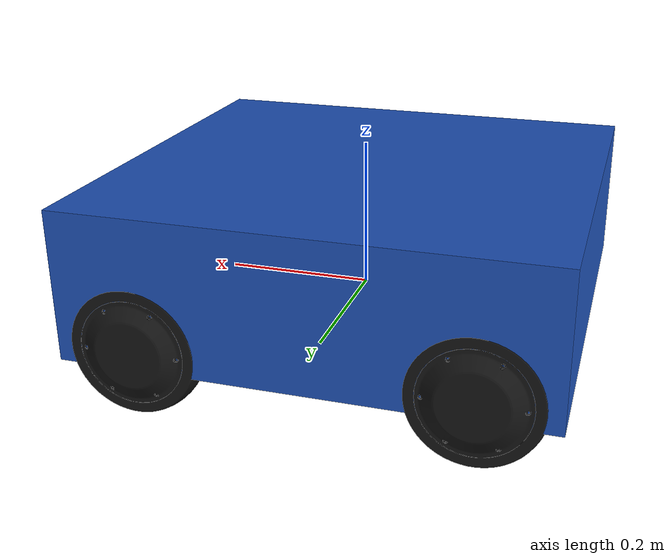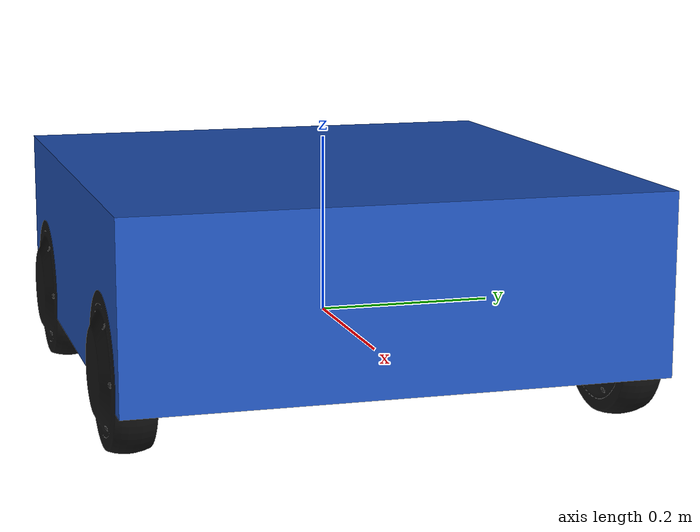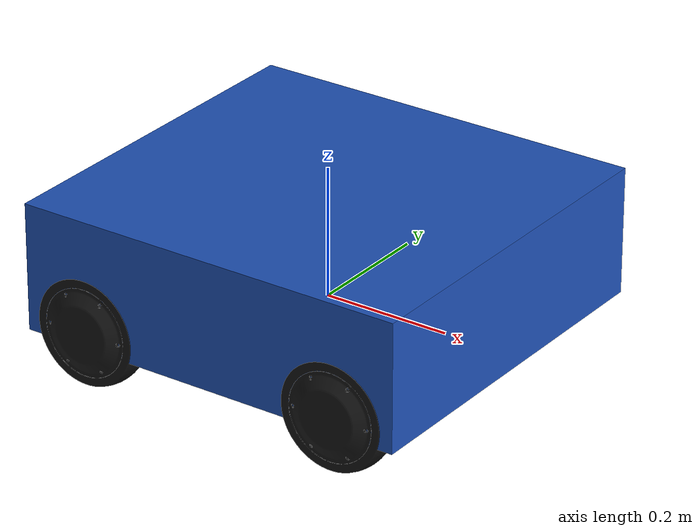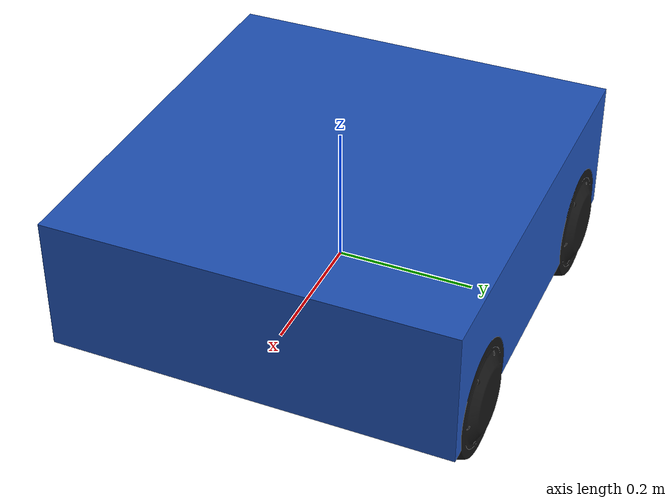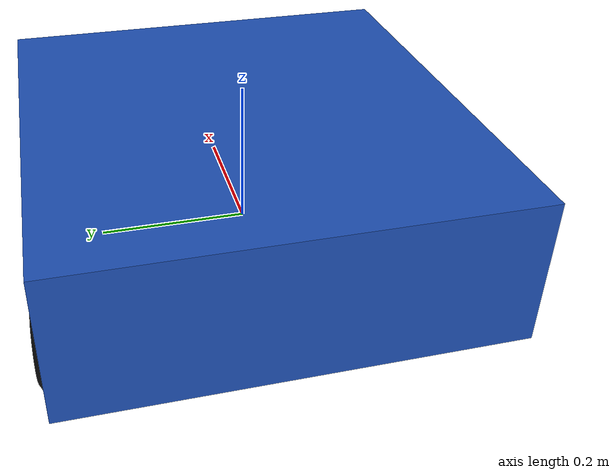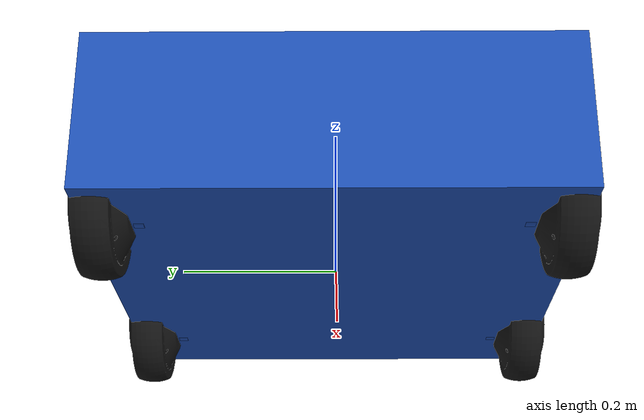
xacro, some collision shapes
<?xml version="1.0"?>
<robot xmlns:xacro="http://www.ros.org/wiki/xacro" name="mobile_base">
  <xacro:arg name="use_mock_hardware" default="false"/>
  <xacro:arg name="dm_can_interface" default="can0"/>
  <xacro:arg name="dm_can_fd" default="false"/>
  <xacro:arg name="zlac_can_interface" default="can1"/>
  <xacro:arg name="front_x" default="0.2095"/>
  <xacro:arg name="rear_x" default="-0.2095"/>
  <xacro:arg name="left_y" default="0.2250"/>
  <xacro:arg name="right_y" default="-0.2250"/>
  <xacro:arg name="wheel_radius" default="0.0855"/>
  <xacro:arg name="use_cad_visuals" default="true"/>
  <xacro:arg name="steering_limit_rad" default="1.5707963267948966"/>
  <xacro:arg name="fl_motor_id" default="0x01"/><xacro:arg name="fl_master_id" default="0x11"/><xacro:arg name="fl_steer_direction" default="1"/><xacro:arg name="fl_offset" default="0"/>
  <xacro:arg name="fr_motor_id" default="0x02"/><xacro:arg name="fr_master_id" default="0x12"/><xacro:arg name="fr_steer_direction" default="1"/><xacro:arg name="fr_offset" default="0"/>
  <xacro:arg name="rl_motor_id" default="0x03"/><xacro:arg name="rl_master_id" default="0x13"/><xacro:arg name="rl_steer_direction" default="1"/><xacro:arg name="rl_offset" default="0"/>
  <xacro:arg name="rr_motor_id" default="0x04"/><xacro:arg name="rr_master_id" default="0x14"/><xacro:arg name="rr_steer_direction" default="1"/><xacro:arg name="rr_offset" default="0"/>
  <xacro:arg name="fl_steer_max_velocity" default="0.5"/><xacro:arg name="fr_steer_max_velocity" default="0.5"/>
  <xacro:arg name="rl_steer_max_velocity" default="0.5"/><xacro:arg name="rr_steer_max_velocity" default="0.5"/>
  <xacro:arg name="fl_node" default="1"/><xacro:arg name="fl_channel" default="1"/><xacro:arg name="fl_drive_direction" default="1"/><xacro:arg name="fl_gear_ratio" default="1"/><xacro:arg name="fl_max_rpm" default="1000"/>
  <xacro:arg name="fr_node" default="1"/><xacro:arg name="fr_channel" default="2"/><xacro:arg name="fr_drive_direction" default="-1"/><xacro:arg name="fr_gear_ratio" default="1"/><xacro:arg name="fr_max_rpm" default="1000"/>
  <xacro:arg name="rl_node" default="2"/><xacro:arg name="rl_channel" default="1"/><xacro:arg name="rl_drive_direction" default="1"/><xacro:arg name="rl_gear_ratio" default="1"/><xacro:arg name="rl_max_rpm" default="1000"/>
  <xacro:arg name="rr_node" default="2"/><xacro:arg name="rr_channel" default="2"/><xacro:arg name="rr_drive_direction" default="-1"/><xacro:arg name="rr_gear_ratio" default="1"/><xacro:arg name="rr_max_rpm" default="1000"/>

  <material name="chassis_blue">
    <color rgba="0.12 0.32 0.72 1.0"/>
  </material>
  <material name="wheel_dark">
    <color rgba="0.08 0.08 0.08 1.0"/>
  </material>

  <link name="base_link">
    <inertial>
      <origin xyz="-0.00034 -0.00200 0.08816" rpy="0 0 0"/>
      <mass value="4.6188"/>
      <inertia ixx="0.036984" ixy="0" ixz="0" iyy="0.028019" iyz="0" izz="0.062335"/>
    </inertial>
    <xacro:if value="$(arg use_cad_visuals)">
      <visual>
        <!-- Recenter CAD and convert its X/Y/Z convention to REP-103. -->
        <origin xyz="0.236324 1.3581995 0.043774" rpy="3.14159265 0 -1.57079633"/>
        <geometry><mesh filename="package://mobile_base_description/meshes/chassis_4wis_cad/base_link.STL"/></geometry>
        <material name="chassis_blue"/>
      </visual>
    </xacro:if>
    <xacro:unless value="$(arg use_cad_visuals)">
      <visual>
        <origin xyz="0 0 0.0745" rpy="0 0 0"/>
        <geometry><box size="0.620 0.580 0.197"/></geometry>
        <material name="chassis_blue"/>
      </visual>
    </xacro:unless>
    <!-- Deliberately simple: triangle-mesh collision is too costly for MoveIt/Isaac. -->
    <collision>
      <origin xyz="0 0 0.0745" rpy="0 0 0"/>
      <geometry><box size="0.620 0.580 0.197"/></geometry>
    </collision>
  </link>

  <xacro:macro name="swerve_module" params="name xyz wheel_y_offset steer_mesh steer_mesh_xyz steer_mesh_rpy wheel_mesh wheel_mesh_xyz wheel_mesh_rpy">
    <link name="${name}_steer_link">
      <inertial>
        <origin xyz="0 0 0.04" rpy="0 0 0"/>
        <mass value="0.11351"/>
        <inertia ixx="0.000064" ixy="0" ixz="0" iyy="0.000064" iyz="0" izz="0.000044"/>
      </inertial>
      <xacro:if value="$(arg use_cad_visuals)">
        <visual>
          <origin xyz="${steer_mesh_xyz}" rpy="${steer_mesh_rpy}"/>
          <geometry><mesh filename="package://mobile_base_description/meshes/chassis_4wis_cad/${steer_mesh}"/></geometry>
          <material name="chassis_blue"/>
        </visual>
      </xacro:if>
      <xacro:unless value="$(arg use_cad_visuals)">
        <visual>
          <origin xyz="0 0 0.04" rpy="0 0 0"/>
          <geometry><cylinder radius="0.045" length="0.13"/></geometry>
          <material name="chassis_blue"/>
        </visual>
      </xacro:unless>
      <collision>
        <origin xyz="0 0 0.04" rpy="0 0 0"/>
        <geometry><cylinder radius="0.045" length="0.13"/></geometry>
      </collision>
    </link>
    <link name="${name}_wheel_link">
      <inertial>
        <origin xyz="0 0 0" rpy="0 0 0"/>
        <mass value="1.1612"/>
        <inertia ixx="0.0022" ixy="0" ixz="0" iyy="0.0040" iyz="0" izz="0.0022"/>
      </inertial>
      <xacro:if value="$(arg use_cad_visuals)">
        <visual>
          <origin xyz="${wheel_mesh_xyz}" rpy="${wheel_mesh_rpy}"/>
          <geometry><mesh filename="package://mobile_base_description/meshes/chassis_4wis_cad/${wheel_mesh}"/></geometry>
          <material name="wheel_dark"/>
        </visual>
      </xacro:if>
      <xacro:unless value="$(arg use_cad_visuals)">
        <visual>
          <origin xyz="0 0 0" rpy="1.57079632679 0 0"/>
          <geometry><cylinder radius="$(arg wheel_radius)" length="0.0683"/></geometry>
          <material name="wheel_dark"/>
        </visual>
      </xacro:unless>
      <collision>
        <origin xyz="0 0 0" rpy="1.57079632679 0 0"/>
        <geometry><cylinder radius="$(arg wheel_radius)" length="0.0683"/></geometry>
      </collision>
    </link>
    <joint name="${name}_steer_joint" type="revolute">
      <parent link="base_link"/>
      <child link="${name}_steer_link"/>
      <origin xyz="${xyz}" rpy="0 0 0"/>
      <axis xyz="0 0 1"/>
      <limit lower="-${steering_limit_rad}" upper="${steering_limit_rad}" effort="100" velocity="0.5"/>
    </joint>
    <joint name="${name}_drive_joint" type="continuous">
      <parent link="${name}_steer_link"/>
      <child link="${name}_wheel_link"/>
      <!-- CAD has an approximately 43 mm kingpin-to-wheel-centre offset. -->
      <origin xyz="0 ${wheel_y_offset} 0" rpy="0 0 0"/>
      <axis xyz="0 1 0"/>
    </joint>
  </xacro:macro>

  <xacro:property name="steering_limit_rad" value="$(arg steering_limit_rad)"/>
  <!-- The source export's front-left wheel joint is corrupt; its visual uses the equivalent left-rear wheel mesh. -->
  <xacro:swerve_module name="front_left" xyz="$(arg front_x) $(arg left_y) 0" wheel_y_offset="0.0430"
    steer_mesh="front_left_steer_link.STL" steer_mesh_xyz="0.026824 0.006400 0.040002" steer_mesh_rpy="-1.570793 0 0.000004"
    wheel_mesh="rear_left_wheel_link.STL" wheel_mesh_xyz="0.117174 1.484790 0.000012" wheel_mesh_rpy="-2.090503 0 1.570789"/>
  <xacro:swerve_module name="front_right" xyz="$(arg front_x) $(arg right_y) 0" wheel_y_offset="-0.0430"
    steer_mesh="front_right_steer_link.STL" steer_mesh_xyz="0.026824 0 0.090002" steer_mesh_rpy="0.000007 0 -0.474296"
    wheel_mesh="front_right_wheel_link.STL" wheel_mesh_xyz="0.115969 -1.484756 -0.000008" wheel_mesh_rpy="-2.090497 0.000007 -1.570796"/>
  <xacro:swerve_module name="rear_left" xyz="$(arg rear_x) $(arg left_y) 0" wheel_y_offset="0.0430"
    steer_mesh="rear_left_steer_link.STL" steer_mesh_xyz="0.046974 0 0.090002" steer_mesh_rpy="-0.000007 0 2.667289"
    wheel_mesh="rear_left_wheel_link.STL" wheel_mesh_xyz="0.117174 1.484790 0.000012" wheel_mesh_rpy="-2.090503 0 1.570789"/>
  <xacro:swerve_module name="rear_right" xyz="$(arg rear_x) $(arg right_y) 0" wheel_y_offset="-0.0430"
    steer_mesh="rear_right_steer_link.STL" steer_mesh_xyz="0.046974 0 0.090002" steer_mesh_rpy="0.000007 0 -0.474296"
    wheel_mesh="rear_right_wheel_link.STL" wheel_mesh_xyz="0.115922 -1.484729 -0.000008" wheel_mesh_rpy="-2.090497 0.000007 -1.570796"/>

  <ros2_control name="mobile_base_system" type="system">
    <hardware>
      <xacro:if value="$(arg use_mock_hardware)">
        <plugin>mock_components/GenericSystem</plugin>
        <param name="calculate_dynamics">true</param>
      </xacro:if>
      <xacro:unless value="$(arg use_mock_hardware)">
        <plugin>mobile_base_driver/SwerveHardware</plugin>
        <param name="dm_can_interface">$(arg dm_can_interface)</param>
        <param name="dm_can_fd">$(arg dm_can_fd)</param>
        <param name="zlac_can_interface">$(arg zlac_can_interface)</param>
        <param name="transaction_timeout_ms">100</param>
        <!-- ZLAC's own 500 ms watchdog stops motion first. Allow up to 1 s for
             intermittent SDO feedback jitter before ros2_control offlines the
             complete hardware component. -->
        <param name="state_timeout_ms">1000</param>

        <!-- 任一 DM4340P 24V 的量程或输出轴绝对位置读取失败时，硬件配置必须失败。 -->
        <param name="require_absolute_steering">true</param>

        <!-- 下列 ZLAC 参数已按 V4 CANopen 通信说明 V1.01 核对。 -->
        <param name="drive_acceleration">100</param>
        <param name="drive_deceleration">100</param>
        <!-- 0x2000 建议 200~1000 ms；500 ms 仅写运行参数，不写 EEPROM。 -->
        <param name="drive_communication_watchdog_ms">500</param>
        <param name="drive_diagnostic_period_ms">100</param>
        <param name="zlac_communication_watchdog_index">0x2000</param>
        <param name="zlac_synchronous_control_index">0x200F</param>
        <param name="zlac_fault_code_index">0x603F</param>
        <param name="zlac_controlword_index">0x6040</param>
        <param name="zlac_statusword_index">0x6041</param>
        <param name="zlac_mode_index">0x6060</param>
        <param name="zlac_mode_display_index">0x6061</param>
        <param name="zlac_target_velocity_index">0x60FF</param>
        <param name="zlac_actual_velocity_index">0x606C</param>
        <param name="zlac_acceleration_index">0x6083</param>
        <param name="zlac_deceleration_index">0x6084</param>
      </xacro:unless>
    </hardware>

    <!--
      motor_id: 电机 ESC_ID；位置速度模式的发送 ID 为 0x100 + motor_id。
      master_id: 电机 MST_ID；驱动只接受该 CAN ID 上的状态反馈。
      两个值必须与达妙官方软件写入电机的值一致。
    -->
    <xacro:macro name="dm4340p_joint" params="name motor_id master_id command_velocity direction:=1.0 offset:=0.0">
      <joint name="${name}_steer_joint">
        <command_interface name="position">
          <param name="min">-${steering_limit_rad}</param>
          <param name="max">${steering_limit_rad}</param>
        </command_interface>
        <state_interface name="position"/>
        <state_interface name="velocity"/>
        <state_interface name="effort"/>
        <param name="kind">steering</param>
        <param name="motor_model">DM-J4340P-2EC-24V</param>
        <param name="motor_id">${motor_id}</param>
        <param name="master_id">${master_id}</param>
        <param name="direction">${direction}</param>
        <param name="offset_rad">${offset}</param>
        <!-- xout(0x51) 是输出轴编码器直接测得的单圈绝对位置。 -->
        <param name="use_absolute_output_encoder">true</param>
        <param name="absolute_position_register">0x51</param>
        <!-- 初次上机默认 0.5 rad/s；实际值由 chassis.yaml 为每个轮组配置。 -->
        <param name="command_velocity_rad_s">${command_velocity}</param>
      </joint>
    </xacro:macro>

    <xacro:macro name="zlac_joint" params="name node channel direction:=1.0 gear_ratio:=1.0 max_motor_rpm:=1000.0">
      <joint name="${name}_drive_joint">
        <command_interface name="velocity"/>
        <state_interface name="position"/>
        <state_interface name="velocity"/>
        <state_interface name="effort"/>
        <param name="kind">drive</param>
        <param name="node_id">${node}</param>
        <param name="channel">${channel}</param>
        <param name="direction">${direction}</param>
        <param name="gear_ratio">${gear_ratio}</param>
        <param name="max_motor_rpm">${max_motor_rpm}</param>
        <param name="command_units_per_rpm">1.0</param>
        <param name="feedback_rpm_per_unit">0.1</param>
      </joint>
    </xacro:macro>

    <!--
      在这里填写四台电机通过官方软件设置的 ESC_ID 和 MST_ID。
      下列独立 MST_ID 是推荐值；必须先将相同数值写入对应电机。
      四台电机必须在上位机中预先设置 CTRL_MODE=2（位置速度模式）。
      offset 是“车轮机械朝前”相对输出轴编码器零点的一次性标定值，掉电后无需重做。
    -->
    <xacro:dm4340p_joint name="front_left"  motor_id="$(arg fl_motor_id)" master_id="$(arg fl_master_id)" command_velocity="$(arg fl_steer_max_velocity)" direction="$(arg fl_steer_direction)" offset="$(arg fl_offset)"/>
    <xacro:dm4340p_joint name="front_right" motor_id="$(arg fr_motor_id)" master_id="$(arg fr_master_id)" command_velocity="$(arg fr_steer_max_velocity)" direction="$(arg fr_steer_direction)" offset="$(arg fr_offset)"/>
    <xacro:dm4340p_joint name="rear_left"   motor_id="$(arg rl_motor_id)" master_id="$(arg rl_master_id)" command_velocity="$(arg rl_steer_max_velocity)" direction="$(arg rl_steer_direction)" offset="$(arg rl_offset)"/>
    <xacro:dm4340p_joint name="rear_right"  motor_id="$(arg rr_motor_id)" master_id="$(arg rr_master_id)" command_velocity="$(arg rr_steer_max_velocity)" direction="$(arg rr_steer_direction)" offset="$(arg rr_offset)"/>

    <!-- 默认每根车轴使用一台双通道 ZLAC8015D；必须在底盘架空时核对方向。 -->
    <xacro:zlac_joint name="front_left" node="$(arg fl_node)" channel="$(arg fl_channel)" direction="$(arg fl_drive_direction)" gear_ratio="$(arg fl_gear_ratio)" max_motor_rpm="$(arg fl_max_rpm)"/>
    <xacro:zlac_joint name="front_right" node="$(arg fr_node)" channel="$(arg fr_channel)" direction="$(arg fr_drive_direction)" gear_ratio="$(arg fr_gear_ratio)" max_motor_rpm="$(arg fr_max_rpm)"/>
    <xacro:zlac_joint name="rear_left" node="$(arg rl_node)" channel="$(arg rl_channel)" direction="$(arg rl_drive_direction)" gear_ratio="$(arg rl_gear_ratio)" max_motor_rpm="$(arg rl_max_rpm)"/>
    <xacro:zlac_joint name="rear_right" node="$(arg rr_node)" channel="$(arg rr_channel)" direction="$(arg rr_drive_direction)" gear_ratio="$(arg rr_gear_ratio)" max_motor_rpm="$(arg rr_max_rpm)"/>
  </ros2_control>
</robot>
